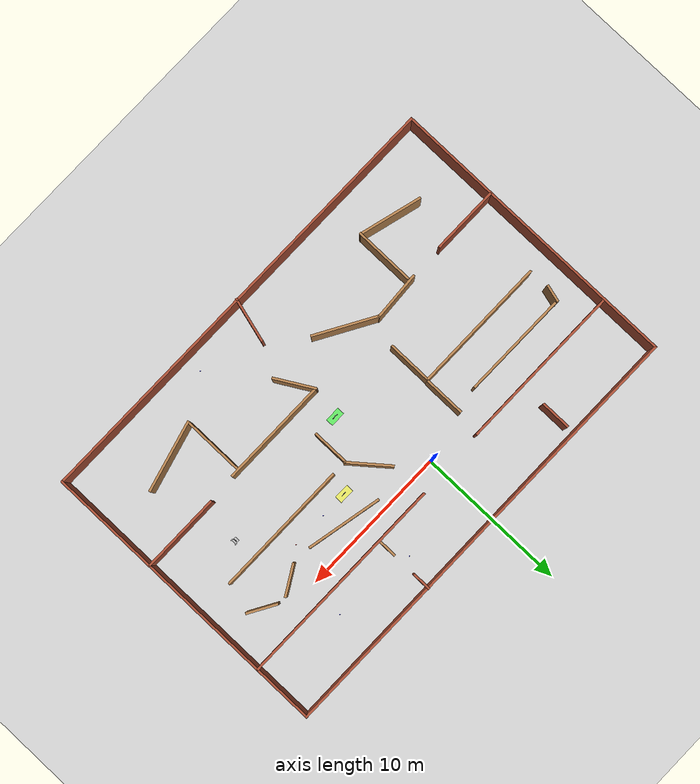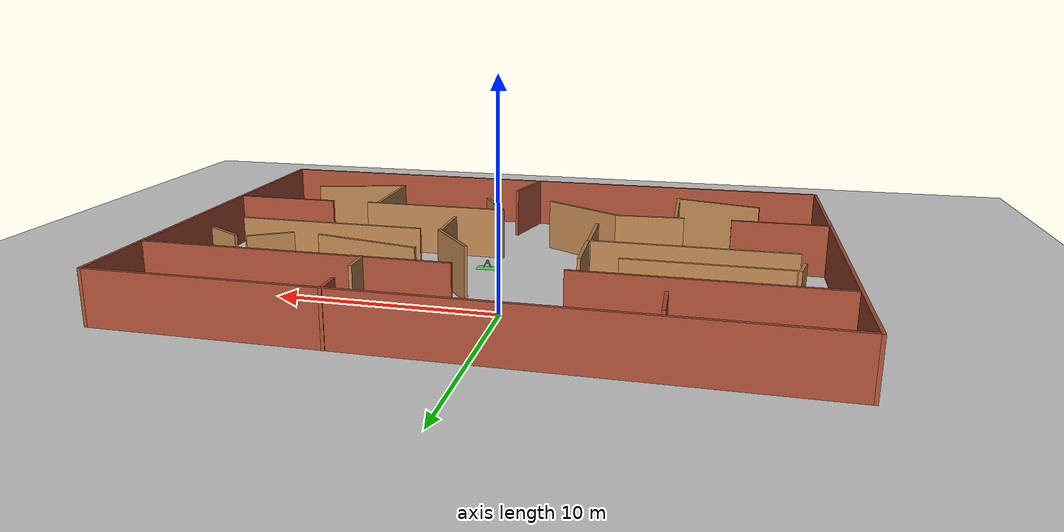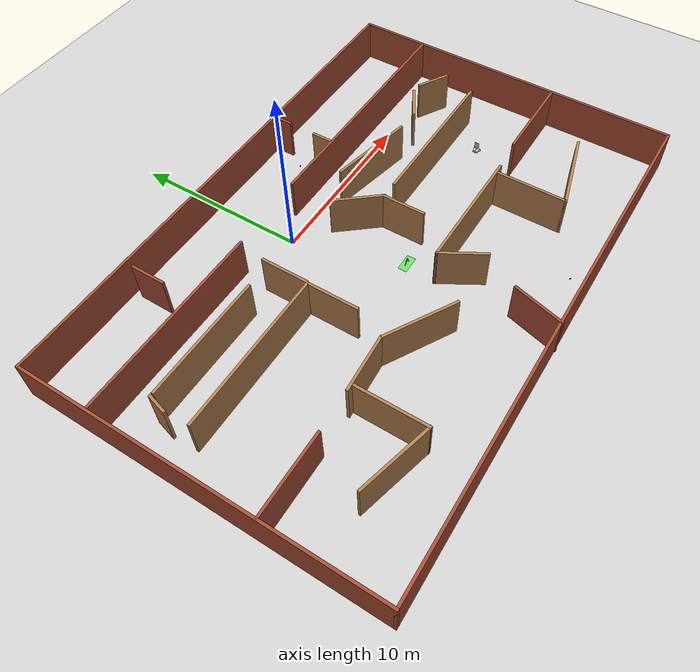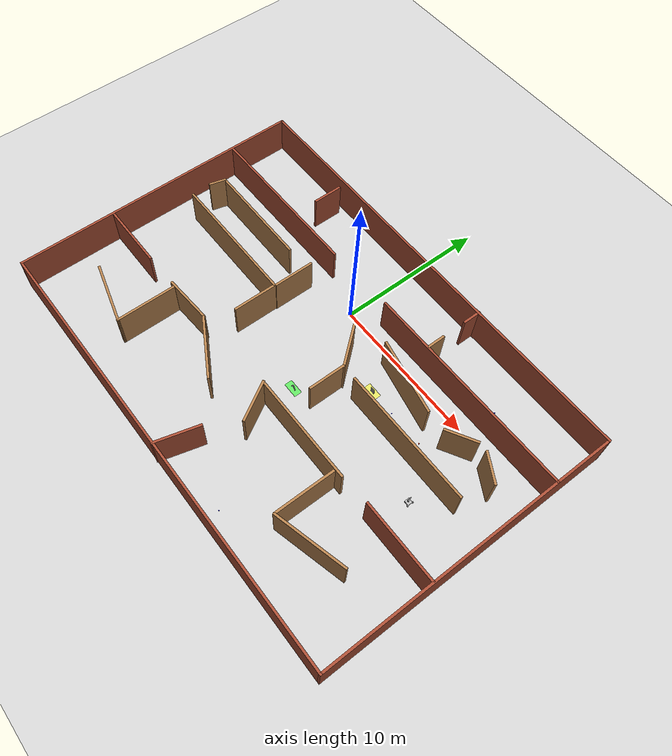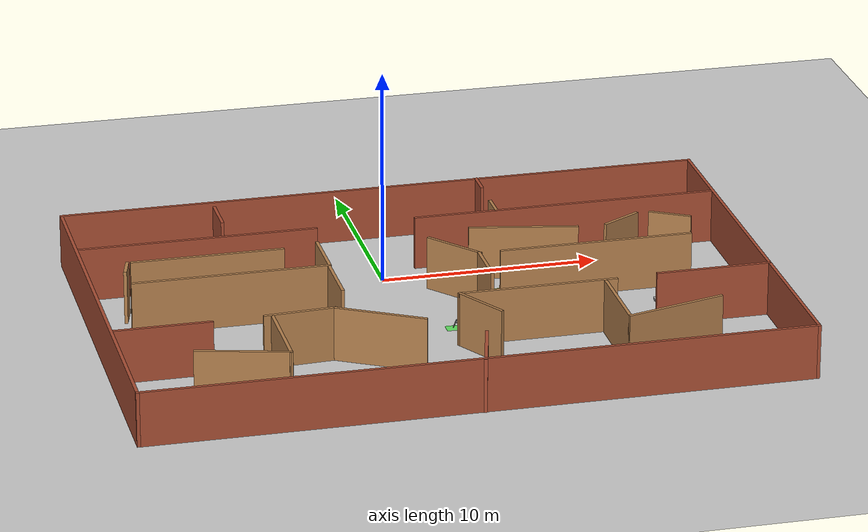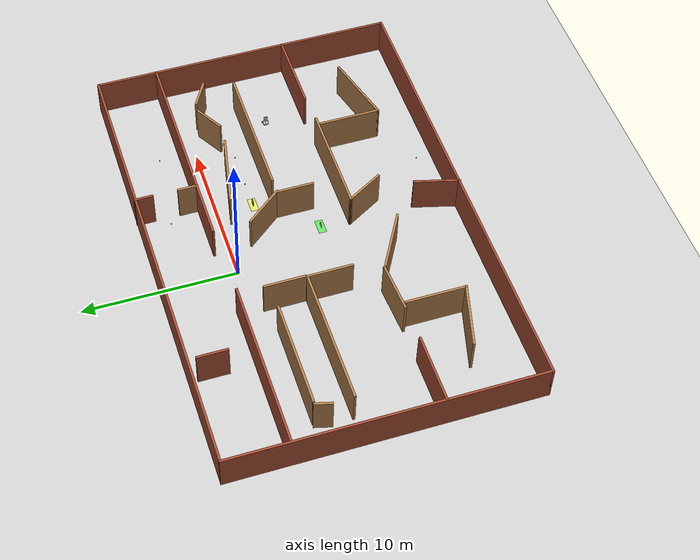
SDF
<sdf version="1.7">
 <world name="my_world">
  <model name="ground_plane">
   <static>1</static>
   <link name="link">
    <collision name="collision">
     <geometry><plane><normal>0 0 1</normal><size>100 100</size></plane></geometry>
     <surface>
      <contact><collide_bitmask>65535</collide_bitmask></contact>
      <friction><ode><mu>100</mu><mu2>50</mu2></ode></friction>
     </surface>
    </collision>
    <visual name="visual">
     <cast_shadows>0</cast_shadows>
     <geometry><plane><normal>0 0 1</normal><size>100 100</size></plane></geometry>
     <material>
      <script><uri>file://media/materials/scripts/gazebo.material</uri><name>Gazebo/Grey</name></script>
     </material>
    </visual>
   </link>
  </model>
  <model name="officeroom">
   <pose>0.9981 -4.92976 0 0 -0 0</pose>
   <link name="Wall_10">
    <collision name="Wall_10_Collision">
     <geometry><box><size>20 0.15 2.5</size></box></geometry>
     <pose>0 0 1.25 0 -0 0</pose>
    </collision>
    <visual name="Wall_10_Visual">
     <pose>0 0 1.25 0 -0 0</pose>
     <geometry><box><size>20 0.15 2.5</size></box></geometry>
     <material>
      <script><uri>file://media/materials/scripts/gazebo.material</uri><name>Gazebo/Bricks</name></script>
      <ambient>1 1 1 1</ambient>
     </material>
     <meta><layer>0</layer></meta>
    </visual>
    <pose>14.925 0.014919 0 0 -0 -1.57081</pose>
   </link>
   <link name="Wall_107">
    <collision name="Wall_107_Collision">
     <geometry><box><size>3.27854 0.15 2.5</size></box></geometry>
     <pose>0 0 1.25 0 -0 0</pose>
    </collision>
    <visual name="Wall_107_Visual">
     <pose>0 0 1.25 0 -0 0</pose>
     <geometry><box><size>3.27854 0.15 2.5</size></box></geometry>
     <material>
      <script><uri>file://media/materials/scripts/gazebo.material</uri><name>Gazebo/Wood</name></script>
      <ambient>1 1 1 1</ambient>
     </material>
     <meta><layer>0</layer></meta>
    </visual>
    <pose>-6.58027 -3.242 0 0 -0 -3.08207</pose>
   </link>
   <link name="Wall_109">
    <collision name="Wall_109_Collision">
     <geometry><box><size>4.5 0.15 2.5</size></box></geometry>
     <pose>0 0 1.25 0 -0 0</pose>
    </collision>
    <visual name="Wall_109_Visual">
     <pose>0 0 1.25 0 -0 0</pose>
     <geometry><box><size>4.5 0.15 2.5</size></box></geometry>
     <material>
      <script><uri>file://media/materials/scripts/gazebo.material</uri><name>Gazebo/Bricks</name></script>
      <ambient>1 1 1 1</ambient>
     </material>
     <meta><layer>0</layer></meta>
    </visual>
    <pose>-12.6881 -3.41033 0 0 -0 0</pose>
   </link>
   <link name="Wall_113">
    <collision name="Wall_113_Collision">
     <geometry><box><size>7.25 0.15 2.5</size></box></geometry>
     <pose>0 0 1.25 0 -0 0</pose>
    </collision>
    <visual name="Wall_113_Visual">
     <pose>0 0 1.25 0 -0 0</pose>
     <geometry><box><size>7.25 0.15 2.5</size></box></geometry>
     <material>
      <script><uri>file://media/materials/scripts/gazebo.material</uri><name>Gazebo/Wood</name></script>
      <ambient>1 1 1 1</ambient>
     </material>
     <meta><layer>0</layer></meta>
    </visual>
    <pose>4.22386 -2.91887 0 0 -0 0</pose>
   </link>
   <link name="Wall_115">
    <collision name="Wall_115_Collision">
     <geometry><box><size>5.25 0.15 2.5</size></box></geometry>
     <pose>0 0 1.25 0 -0 0</pose>
    </collision>
    <visual name="Wall_115_Visual">
     <pose>0 0 1.25 0 -0 0</pose>
     <geometry><box><size>5.25 0.15 2.5</size></box></geometry>
     <material>
      <script><uri>file://media/materials/scripts/gazebo.material</uri><name>Gazebo/Bricks</name></script>
      <ambient>1 1 1 1</ambient>
     </material>
     <meta><layer>0</layer></meta>
    </visual>
    <pose>12.3137 -2.7793 0 0 -0 3.14159</pose>
   </link>
   <link name="Wall_118">
    <collision name="Wall_118_Collision">
     <geometry><box><size>2.5 0.15 2.5</size></box></geometry>
     <pose>0 0 1.25 0 -0 0</pose>
    </collision>
    <visual name="Wall_118_Visual">
     <pose>0 0 1.25 0 -0 0</pose>
     <geometry><box><size>2.5 0.15 2.5</size></box></geometry>
     <material>
      <script><uri>file://media/materials/scripts/gazebo.material</uri><name>Gazebo/Wood</name></script>
      <ambient>1 1 1 1</ambient>
     </material>
     <meta><layer>0</layer></meta>
    </visual>
    <pose>2.60295 0.147134 0 0 -0 -1.5708</pose>
   </link>
   <link name="Wall_12">
    <collision name="Wall_12_Collision">
     <geometry><box><size>30 0.15 2.5</size></box></geometry>
     <pose>0 0 1.25 0 -0 0</pose>
    </collision>
    <visual name="Wall_12_Visual">
     <pose>0 0 1.25 0 -0 0</pose>
     <geometry><box><size>30 0.15 2.5</size></box></geometry>
     <material>
      <script><uri>file://media/materials/scripts/gazebo.material</uri><name>Gazebo/Bricks</name></script>
      <ambient>1 1 1 1</ambient>
     </material>
     <meta><layer>0</layer></meta>
    </visual>
    <pose>-0.000162 -9.90993 0 0 -0 3.14159</pose>
   </link>
   <link name="Wall_120">
    <collision name="Wall_120_Collision">
     <geometry><box><size>2.75 0.15 2.5</size></box></geometry>
     <pose>0 0 1.25 0 -0 0</pose>
    </collision>
    <visual name="Wall_120_Visual">
     <pose>0 0 1.25 0 -0 0</pose>
     <geometry><box><size>2.75 0.15 2.5</size></box></geometry>
     <material>
      <script><uri>file://media/materials/scripts/gazebo.material</uri><name>Gazebo/Wood</name></script>
      <ambient>1 1 1 1</ambient>
     </material>
     <meta><layer>0</layer></meta>
    </visual>
    <pose>1.32386 -4.0447 0 0 -0 -1.0472</pose>
   </link>
   <link name="Wall_125">
    <collision name="Wall_125_Collision">
     <geometry><box><size>4 0.15 2.5</size></box></geometry>
     <pose>0 0 1.25 0 -0 0</pose>
    </collision>
    <visual name="Wall_125_Visual">
     <pose>0 0 1.25 0 -0 0</pose>
     <geometry><box><size>4 0.15 2.5</size></box></geometry>
     <material>
      <script><uri>file://media/materials/scripts/gazebo.material</uri><name>Gazebo/Wood</name></script>
      <ambient>1 1 1 1</ambient>
     </material>
     <meta><layer>0</layer></meta>
    </visual>
    <pose>-7.82101 -5.406 0 0 -0 -1.5708</pose>
   </link>
   <link name="Wall_127">
    <collision name="Wall_127_Collision">
     <geometry><box><size>4 0.15 2.5</size></box></geometry>
     <pose>0 0 1.25 0 -0 0</pose>
    </collision>
    <visual name="Wall_127_Visual">
     <pose>0 0 1.25 0 -0 0</pose>
     <geometry><box><size>4 0.15 2.5</size></box></geometry>
     <material>
      <script><uri>file://media/materials/scripts/gazebo.material</uri><name>Gazebo/Wood</name></script>
      <ambient>1 1 1 1</ambient>
     </material>
     <meta><layer>0</layer></meta>
    </visual>
    <pose>7.28181 -5.01384 0 0 -0 -1.5708</pose>
   </link>
   <link name="Wall_129">
    <collision name="Wall_129_Collision">
     <geometry><box><size>4.25 0.15 2.5</size></box></geometry>
     <pose>0 0 1.25 0 -0 0</pose>
    </collision>
    <visual name="Wall_129_Visual">
     <pose>0 0 1.25 0 -0 0</pose>
     <geometry><box><size>4.25 0.15 2.5</size></box></geometry>
     <material>
      <script><uri>file://media/materials/scripts/gazebo.material</uri><name>Gazebo/Wood</name></script>
      <ambient>1 1 1 1</ambient>
     </material>
     <meta><layer>0</layer></meta>
    </visual>
    <pose>-9.80116 -6.80042 0 0 -0 2.87979</pose>
   </link>
   <link name="Wall_132">
    <collision name="Wall_132_Collision">
     <geometry><box><size>4.75 0.15 2.5</size></box></geometry>
     <pose>0 0 1.25 0 -0 0</pose>
    </collision>
    <visual name="Wall_132_Visual">
     <pose>0 0 1.25 0 -0 0</pose>
     <geometry><box><size>4.75 0.15 2.5</size></box></geometry>
     <material>
      <script><uri>file://media/materials/scripts/gazebo.material</uri><name>Gazebo/Wood</name></script>
      <ambient>1 1 1 1</ambient>
     </material>
     <meta><layer>0</layer></meta>
    </visual>
    <pose>9.51735 -6.40461 0 0 -0 0.261799</pose>
   </link>
   <link name="Wall_134">
    <collision name="Wall_134_Collision">
     <geometry><box><size>3 0.15 2.5</size></box></geometry>
     <pose>0 0 1.25 0 -0 0</pose>
    </collision>
    <visual name="Wall_134_Visual">
     <pose>0 0 1.25 0 -0 0</pose>
     <geometry><box><size>3 0.15 2.5</size></box></geometry>
     <material>
      <script><uri>file://media/materials/scripts/gazebo.material</uri><name>Gazebo/Bricks</name></script>
      <ambient>1 1 1 1</ambient>
     </material>
     <meta><layer>0</layer></meta>
    </visual>
    <pose>0.445972 -8.57754 0 0 -0 1.309</pose>
   </link>
   <link name="Wall_15">
    <collision name="Wall_15_Collision">
     <geometry><box><size>20 0.15 2.5</size></box></geometry>
     <pose>0 0 1.25 0 -0 0</pose>
    </collision>
    <visual name="Wall_15_Visual">
     <pose>0 0 1.25 0 -0 0</pose>
     <geometry><box><size>20 0.15 2.5</size></box></geometry>
     <material>
      <script><uri>file://media/materials/scripts/gazebo.material</uri><name>Gazebo/Bricks</name></script>
      <ambient>1 1 1 1</ambient>
     </material>
     <meta><layer>0</layer></meta>
    </visual>
    <pose>-14.9252 0.015073 0 0 -0 1.5708</pose>
   </link>
   <link name="Wall_2">
    <collision name="Wall_2_Collision">
     <geometry><box><size>30 0.15 2.5</size></box></geometry>
     <pose>0 0 1.25 0 -0 0</pose>
    </collision>
    <visual name="Wall_2_Visual">
     <pose>0 0 1.25 0 -0 0</pose>
     <geometry><box><size>30 0.15 2.5</size></box></geometry>
     <material>
      <script><uri>file://media/materials/scripts/gazebo.material</uri><name>Gazebo/Bricks</name></script>
      <ambient>1 1 1 1</ambient>
     </material>
     <meta><layer>0</layer></meta>
    </visual>
    <pose>0.000163 9.93976 0 0 -0 0</pose>
   </link>
   <link name="Wall_29">
    <collision name="Wall_29_Collision">
     <geometry><box><size>1.25 0.15 2.5</size></box></geometry>
     <pose>0 0 1.25 0 -0 0</pose>
    </collision>
    <visual name="Wall_29_Visual">
     <pose>0 0 1.25 0 -0 0</pose>
     <geometry><box><size>1.25 0.15 2.5</size></box></geometry>
     <material>
      <script><uri>file://media/materials/scripts/gazebo.material</uri><name>Gazebo/Bricks</name></script>
      <ambient>1 1 1 1</ambient>
     </material>
     <meta><layer>0</layer></meta>
    </visual>
    <pose>4.61028 9.42084 0 0 -0 -1.5708</pose>
   </link>
   <link name="Wall_31">
    <collision name="Wall_31_Collision">
     <geometry><box><size>1.25 0.15 2.5</size></box></geometry>
     <pose>0 0 1.25 0 -0 0</pose>
    </collision>
    <visual name="Wall_31_Visual">
     <pose>0 0 1.25 0 -0 0</pose>
     <geometry><box><size>1.25 0.15 2.5</size></box></geometry>
     <material>
      <script><uri>file://media/materials/scripts/gazebo.material</uri><name>Gazebo/Wood</name></script>
      <ambient>1 1 1 1</ambient>
     </material>
     <meta><layer>0</layer></meta>
    </visual>
    <pose>4.59016 6.61881 0 0 -0 1.5708</pose>
   </link>
   <link name="Wall_34">
    <collision name="Wall_34_Collision">
     <geometry><box><size>2 0.15 2.5</size></box></geometry>
     <pose>0 0 1.25 0 -0 0</pose>
    </collision>
    <visual name="Wall_34_Visual">
     <pose>0 0 1.25 0 -0 0</pose>
     <geometry><box><size>2 0.15 2.5</size></box></geometry>
     <material>
      <script><uri>file://media/materials/scripts/gazebo.material</uri><name>Gazebo/Bricks</name></script>
      <ambient>1 1 1 1</ambient>
     </material>
     <meta><layer>0</layer></meta>
    </visual>
    <pose>-7.92097 8.43964 0 0 -0 -1.5708</pose>
   </link>
   <link name="Wall_38">
    <collision name="Wall_38_Collision">
     <geometry><box><size>11 0.15 2.5</size></box></geometry>
     <pose>0 0 1.25 0 -0 0</pose>
    </collision>
    <visual name="Wall_38_Visual">
     <pose>0 0 1.25 0 -0 0</pose>
     <geometry><box><size>11 0.15 2.5</size></box></geometry>
     <material>
      <script><uri>file://media/materials/scripts/gazebo.material</uri><name>Gazebo/Bricks</name></script>
      <ambient>1 1 1 1</ambient>
     </material>
     <meta><layer>0</layer></meta>
    </visual>
    <pose>-9.35541 5.8262 0 0 -0 0</pose>
   </link>
   <link name="Wall_40">
    <collision name="Wall_40_Collision">
     <geometry><box><size>14.25 0.15 2.5</size></box></geometry>
     <pose>0 0 1.25 0 -0 0</pose>
    </collision>
    <visual name="Wall_40_Visual">
     <pose>0 0 1.25 0 -0 0</pose>
     <geometry><box><size>14.25 0.15 2.5</size></box></geometry>
     <material>
      <script><uri>file://media/materials/scripts/gazebo.material</uri><name>Gazebo/Bricks</name></script>
      <ambient>1 1 1 1</ambient>
     </material>
     <meta><layer>0</layer></meta>
    </visual>
    <pose>7.83962 5.98375 0 0 -0 3.14159</pose>
   </link>
   <link name="Wall_46">
    <collision name="Wall_46_Collision">
     <geometry><box><size>7.0 0.15 2.5</size></box></geometry>
     <pose>0 0 1.25 0 -0 0</pose>
    </collision>
    <visual name="Wall_46_Visual">
     <pose>0 0 1.25 0 -0 0</pose>
     <geometry><box><size>7.0 0.15 2.5</size></box></geometry>
     <material>
      <script><uri>file://media/materials/scripts/gazebo.material</uri><name>Gazebo/Wood</name></script>
      <ambient>1 1 1 1</ambient>
     </material>
     <meta><layer>0</layer></meta>
    </visual>
    <pose>-9.30884 3.8355 0 0 -0 -0.004163</pose>
   </link>
   <link name="Wall_49">
    <collision name="Wall_49_Collision">
     <geometry><box><size>1.17019 0.15 2.5</size></box></geometry>
     <pose>0 0 1.25 0 -0 0</pose>
    </collision>
    <visual name="Wall_49_Visual">
     <pose>0 0 1.25 0 -0 0</pose>
     <geometry><box><size>1.17019 0.15 2.5</size></box></geometry>
     <material>
      <script><uri>file://media/materials/scripts/gazebo.material</uri><name>Gazebo/Wood</name></script>
      <ambient>1 1 1 1</ambient>
     </material>
     <meta><layer>0</layer></meta>
    </visual>
    <pose>-13.076 3.35727 0 0 -0 -1.82702</pose>
   </link>
   <link name="Wall_57">
    <collision name="Wall_57_Collision">
     <geometry><box><size>2.75 0.15 2.5</size></box></geometry>
     <pose>0 0 1.25 0 -0 0</pose>
    </collision>
    <visual name="Wall_57_Visual">
     <pose>0 0 1.25 0 -0 0</pose>
     <geometry><box><size>2.75 0.15 2.5</size></box></geometry>
     <material>
      <script><uri>file://media/materials/scripts/gazebo.material</uri><name>Gazebo/Wood</name></script>
      <ambient>1 1 1 1</ambient>
     </material>
     <meta><layer>0</layer></meta>
    </visual>
    <pose>-4.21161 2.89682 0 0 -0 1.5708</pose>
   </link>
   <link name="Wall_59">
    <collision name="Wall_59_Collision">
     <geometry><box><size>5.0 0.15 2.5</size></box></geometry>
     <pose>0 0 1.25 0 -0 0</pose>
    </collision>
    <visual name="Wall_59_Visual">
     <pose>0 0 1.25 0 -0 0</pose>
     <geometry><box><size>5.0 0.15 2.5</size></box></geometry>
     <material>
      <script><uri>file://media/materials/scripts/gazebo.material</uri><name>Gazebo/Wood</name></script>
      <ambient>1 1 1 1</ambient>
     </material>
     <meta><layer>0</layer></meta>
    </visual>
    <pose>5.28704 3.77735 0 0 -0 -0.202428</pose>
   </link>
   <link name="Wall_60">
    <collision name="Wall_60_Collision">
     <geometry><box><size>2.1 0.15 2.5</size></box></geometry>
     <pose>0 0 1.25 0 -0 0</pose>
    </collision>
    <visual name="Wall_60_Visual">
     <pose>0 0 1.25 0 -0 0</pose>
     <geometry><box><size>2.1 0.15 2.5</size></box></geometry>
     <material>
      <script><uri>file://media/materials/scripts/gazebo.material</uri><name>Gazebo/Wood</name></script>
      <ambient>1 1 1 1</ambient>
     </material>
     <meta><layer>0</layer></meta>
    </visual>
    <pose>9.88652 3.73459 0 0 -0 0.527727</pose>
   </link>
   <link name="Wall_61">
    <collision name="Wall_61_Collision">
     <geometry><box><size>2.0 0.15 2.5</size></box></geometry>
     <pose>0 0 1.25 0 -0 0</pose>
    </collision>
    <visual name="Wall_61_Visual">
     <pose>0 0 1.25 0 -0 0</pose>
     <geometry><box><size>2.0 0.15 2.5</size></box></geometry>
     <material>
      <script><uri>file://media/materials/scripts/gazebo.material</uri><name>Gazebo/Wood</name></script>
      <ambient>1 1 1 1</ambient>
     </material>
     <meta><layer>0</layer></meta>
    </visual>
    <pose>12.2003 3.7238 0 0 -0 -0.523599</pose>
   </link>
   <link name="Wall_66">
    <collision name="Wall_66_Collision">
     <geometry><box><size>3.01901 0.15 2.5</size></box></geometry>
     <pose>0 0 1.25 0 -0 0</pose>
    </collision>
    <visual name="Wall_66_Visual">
     <pose>0 0 1.25 0 -0 0</pose>
     <geometry><box><size>3.01901 0.15 2.5</size></box></geometry>
     <material>
      <script><uri>file://media/materials/scripts/gazebo.material</uri><name>Gazebo/Wood</name></script>
      <ambient>1 1 1 1</ambient>
     </material>
     <meta><layer>0</layer></meta>
    </visual>
    <pose>1.74226 2.43334 0 0 -0 2.25548</pose>
   </link>
   <link name="Wall_68">
    <collision name="Wall_68_Collision">
     <geometry><box><size>9 0.15 2.5</size></box></geometry>
     <pose>0 0 1.25 0 -0 0</pose>
    </collision>
    <visual name="Wall_68_Visual">
     <pose>0 0 1.25 0 -0 0</pose>
     <geometry><box><size>9 0.15 2.5</size></box></geometry>
     <material>
      <script><uri>file://media/materials/scripts/gazebo.material</uri><name>Gazebo/Wood</name></script>
      <ambient>1 1 1 1</ambient>
     </material>
     <meta><layer>0</layer></meta>
    </visual>
    <pose>-8.68528 1.49923 0 0 -0 3.14159</pose>
   </link>
   <link name="Wall_72">
    <collision name="Wall_72_Collision">
     <geometry><box><size>8.9356 0.15 2.5</size></box></geometry>
     <pose>0 0 1.25 0 -0 0</pose>
    </collision>
    <visual name="Wall_72_Visual">
     <pose>0 0 1.25 0 -0 0</pose>
     <geometry><box><size>8.9356 0.15 2.5</size></box></geometry>
     <material>
      <script><uri>file://media/materials/scripts/gazebo.material</uri><name>Gazebo/Wood</name></script>
      <ambient>1 1 1 1</ambient>
     </material>
     <meta><layer>0</layer></meta>
    </visual>
    <pose>8.04226 1.32213 0 0 -0 3.14159</pose>
   </link>
   <link name="Wall_75">
    <collision name="Wall_75_Collision">
     <geometry><box><size>3 0.15 2.5</size></box></geometry>
     <pose>0 0 1.25 0 -0 0</pose>
    </collision>
    <visual name="Wall_75_Visual">
     <pose>0 0 1.25 0 -0 0</pose>
     <geometry><box><size>3 0.15 2.5</size></box></geometry>
     <material>
      <script><uri>file://media/materials/scripts/gazebo.material</uri><name>Gazebo/Wood</name></script>
      <ambient>1 1 1 1</ambient>
     </material>
     <meta><layer>0</layer></meta>
    </visual>
    <pose>-4.26028 0.074229 0 0 -0 -1.5708</pose>
   </link>
   <link name="Wall_81">
    <collision name="Wall_81_Collision">
     <geometry><box><size>4.25 0.15 2.5</size></box></geometry>
     <pose>0 0 1.25 0 -0 0</pose>
    </collision>
    <visual name="Wall_81_Visual">
     <pose>0 0 1.25 0 -0 0</pose>
     <geometry><box><size>4.25 0.15 2.5</size></box></geometry>
     <material>
      <script><uri>file://media/materials/scripts/gazebo.material</uri><name>Gazebo/Wood</name></script>
      <ambient>1 1 1 1</ambient>
     </material>
     <meta><layer>0</layer></meta>
    </visual>
    <pose>-3.1969 -4.22048 0 0 -0 -0.523599</pose>
   </link>
   <static>1</static>
  </model>
  <model name="blue_cube_1">
   <pose>5.6 -13.8 .025 0 0 0</pose>
   <link name="link">
    <inertial>
     <mass>.03</mass>
     <inertia>
      <ixx>.0000125</ixx>
      <ixy>0</ixy>
      <ixz>0</ixz>
      <iyy>.0000125</iyy>
      <iyz>0</iyz>
      <izz>.0000125</izz>
     </inertia>
    </inertial>
    <collision name="collision">
     <geometry><box><size>.05 .05 .05</size></box></geometry>
     <max_contacts>1</max_contacts>
    </collision>
    <visual name="visual">
     <geometry><box><size>.05 .05 .05</size></box></geometry>
     <material><ambient>0 0 1 1</ambient><diffuse>0 0 1 1</diffuse></material>
    </visual>
   </link>
  </model>
  <model name="zone_a">
   <static>1</static>
   <pose>2.0 -6.0 0.01 0 0 0</pose>
   <link name="base">
    <visual name="visual">
     <geometry><box><size>1 0.5 0.02</size></box></geometry>
     <material><ambient>0 1 0 0.5</ambient><diffuse>0 1 0 0.5</diffuse></material>
    </visual>
   </link>
   <link name="letter_A_1">
    <pose>-0.1 0 0.22 0 0.4 0</pose>
    <visual name="v">
     <geometry><box><size>0.04 0.04 0.4</size></box></geometry>
     <material><ambient>0 0 0 1</ambient><diffuse>0 0 0 1</diffuse></material>
    </visual>
   </link>
   <link name="letter_A_2">
    <pose>0.1 0 0.22 0 -0.4 0</pose>
    <visual name="v">
     <geometry><box><size>0.04 0.04 0.4</size></box></geometry>
     <material><ambient>0 0 0 1</ambient><diffuse>0 0 0 1</diffuse></material>
    </visual>
   </link>
   <link name="letter_A_3">
    <pose>0 0 0.25 0 -0 0</pose>
    <visual name="v">
     <geometry><box><size>0.15 0.04 0.04</size></box></geometry>
     <material><ambient>0 0 0 1</ambient><diffuse>0 0 0 1</diffuse></material>
    </visual>
   </link>
  </model>
  <model name="red_cube_5">
   <pose>9.2 -2.4 .025 0 0 0</pose>
   <link name="link">
    <inertial>
     <mass>.03</mass>
     <inertia>
      <ixx>.0000125</ixx>
      <ixy>0</ixy>
      <ixz>0</ixz>
      <iyy>.0000125</iyy>
      <iyz>0</iyz>
      <izz>.0000125</izz>
     </inertia>
    </inertial>
    <collision name="collision">
     <geometry><box><size>.05 .05 .05</size></box></geometry>
     <max_contacts>1</max_contacts>
    </collision>
    <visual name="visual">
     <geometry><box><size>.05 .05 .05</size></box></geometry>
     <material><ambient>1 0 0 1</ambient><diffuse>1 0 0 1</diffuse></material>
    </visual>
   </link>
  </model>
  <model name="zone_b">
   <static>1</static>
   <pose>5.0 -2.4 0.01 0 0 0</pose>
   <link name="base">
    <visual name="visual">
     <geometry><box><size>1 0.5 0.02</size></box></geometry>
     <material><ambient>1 1 0 0.5</ambient><diffuse>1 1 0 0.5</diffuse></material>
    </visual>
   </link>
   <link name="letter_B_vertical_stroke">
    <pose>-0.1 0 0.2 0 -0 0</pose>
    <visual name="v">
     <geometry><box><size>0.04 0.04 0.4</size></box></geometry>
     <material><ambient>0 0 0 1</ambient><diffuse>0 0 0 1</diffuse></material>
    </visual>
   </link>
   <link name="letter_B_top_horizontal">
    <pose>0.05 0 0.38 0 -0 0</pose>
    <visual name="v">
     <geometry><box><size>0.25 0.04 0.04</size></box></geometry>
     <material><ambient>0 0 0 1</ambient><diffuse>0 0 0 1</diffuse></material>
    </visual>
   </link>
   <link name="letter_B_middle_horizontal">
    <pose>0.05 0 0.2 0 -0 0</pose>
    <visual name="v">
     <geometry><box><size>0.25 0.04 0.04</size></box></geometry>
     <material><ambient>0 0 0 1</ambient><diffuse>0 0 0 1</diffuse></material>
    </visual>
   </link>
   <link name="letter_B_bottom_horizontal">
    <pose>0.05 0 0.02 0 -0 0</pose>
    <visual name="v">
     <geometry><box><size>0.25 0.04 0.04</size></box></geometry>
     <material><ambient>0 0 0 1</ambient><diffuse>0 0 0 1</diffuse></material>
    </visual>
   </link>
   <link name="letter_B_top_vertical_stroke">
    <pose>0.15 0 0.29 0 -0 0</pose>
    <visual name="v">
     <geometry><box><size>0.04 0.04 0.2</size></box></geometry>
     <material><ambient>0 0 0 1</ambient><diffuse>0 0 0 1</diffuse></material>
    </visual>
   </link>
   <link name="letter_B_bottom_vertical_stroke">
    <pose>0.15 0 0.11 0 -0 0</pose>
    <visual name="v">
     <geometry><box><size>0.04 0.04 0.2</size></box></geometry>
     <material><ambient>0 0 0 1</ambient><diffuse>0 0 0 1</diffuse></material>
    </visual>
   </link>
  </model>
  <model name="blue_cube_5">
   <pose>5.0 3.0 .025 0 0 0</pose>
   <link name="link">
    <inertial>
     <mass>.03</mass>
     <inertia>
      <ixx>.0000125</ixx>
      <ixy>0</ixy>
      <ixz>0</ixz>
      <iyy>.0000125</iyy>
      <iyz>0</iyz>
      <izz>.0000125</izz>
     </inertia>
    </inertial>
    <collision name="collision">
     <geometry><box><size>.05 .05 .05</size></box></geometry>
     <max_contacts>1</max_contacts>
    </collision>
    <visual name="visual">
     <geometry><box><size>.05 .05 .05</size></box></geometry>
     <material><ambient>0 0 1 1</ambient><diffuse>0 0 1 1</diffuse></material>
    </visual>
   </link>
  </model>
  <model name="blue_cube_3">
   <pose>6.8 -2.4 .025 0 0 0</pose>
   <link name="link">
    <inertial>
     <mass>.03</mass>
     <inertia>
      <ixx>.0000125</ixx>
      <ixy>0</ixy>
      <ixz>0</ixz>
      <iyy>.0000125</iyy>
      <iyz>0</iyz>
      <izz>.0000125</izz>
     </inertia>
    </inertial>
    <collision name="collision">
     <geometry><box><size>.05 .05 .05</size></box></geometry>
     <max_contacts>1</max_contacts>
    </collision>
    <visual name="visual">
     <geometry><box><size>.05 .05 .05</size></box></geometry>
     <material><ambient>0 0 1 1</ambient><diffuse>0 0 1 1</diffuse></material>
    </visual>
   </link>
  </model>
  <model name="blue_cube_4">
   <pose>10.4 2.4 .025 0 0 0</pose>
   <link name="link">
    <inertial>
     <mass>.03</mass>
     <inertia>
      <ixx>.0000125</ixx>
      <ixy>0</ixy>
      <ixz>0</ixz>
      <iyy>.0000125</iyy>
      <iyz>0</iyz>
      <izz>.0000125</izz>
     </inertia>
    </inertial>
    <collision name="collision">
     <geometry><box><size>.05 .05 .05</size></box></geometry>
     <max_contacts>1</max_contacts>
    </collision>
    <visual name="visual">
     <geometry><box><size>.05 .05 .05</size></box></geometry>
     <material><ambient>0 0 1 1</ambient><diffuse>0 0 1 1</diffuse></material>
    </visual>
   </link>
  </model>
  <model name="competition_camera_overview">
   <static>true</static>
   <pose>1 -4.9 21 0 1.5707963 1.5707963</pose>
   <link name="camera_link">
    <sensor name="overview_sensor" type="camera">
     <always_on>true</always_on>
     <update_rate>60</update_rate>
     <camera name="overview">
      <horizontal_fov>1.5708</horizontal_fov>
      <image><width>640</width><height>360</height><format>R8G8B8</format></image>
      <clip><near>0.05</near><far>60</far></clip>
     </camera>
     <plugin name="overview_ros_camera" filename="libgazebo_ros_camera.so">
      <ros><remapping>~/image_raw:=image_raw</remapping><remapping>~/camera_info:=camera_info</remapping></ros>
      <camera_name>fixed_overview</camera_name>
      <frame_name>fixed_overview_camera</frame_name>
     </plugin>
     <plugin name="overview_compressed_camera" filename="libcompetition_camera_stream.so">
      <topic_name>/fixed_overview/image_raw/compressed</topic_name>
      <frame_name>fixed_overview_camera</frame_name>
     </plugin>
    </sensor>
   </link>
  </model>
  <model name="Move2">
   <link name="base_footprint">
    <inertial>
     <pose>-0.032308 0 0.0857 0 -0 0</pose>
     <mass>13</mass>
     <inertia>
      <ixx>0.108098</ixx>
      <ixy>0</ixy>
      <ixz>-0.02478</ixz>
      <iyy>0.230329</iyy>
      <iyz>0</iyz>
      <izz>0.139753</izz>
     </inertia>
    </inertial>
    <collision name="base_footprint_fixed_joint_lump__base_link_collision">
     <pose>0 0 0.1034 0 -0 0</pose>
     <geometry><box><size>0.32 0.32 0.1</size></box></geometry>
    </collision>
    <collision name="base_footprint_fixed_joint_lump__back_caster_link_collision_1">
     <pose>-0.14 0 0.0267 0 -0 0</pose>
     <geometry><sphere><radius>0.0267</radius></sphere></geometry>
    </collision>
    <visual name="base_footprint_visual"><geometry><box><size>0.001 0.001 0.001</size></box></geometry></visual>
    <visual name="base_footprint_fixed_joint_lump__base_link_visual_1">
     <pose>0 0 0.1034 0 -0 0</pose>
     <geometry><box><size>0.32 0.32 0.1</size></box></geometry>
    </visual>
    <visual name="base_footprint_fixed_joint_lump__back_caster_link_visual_2">
     <pose>-0.14 0 0.0267 0 -0 0</pose>
     <geometry><sphere><radius>0.0267</radius></sphere></geometry>
    </visual>
   </link>
   <joint name="left_wheel_joint" type="fixed">
    <pose relative_to="base_footprint">0.14 0.185 0.0684 0 -0 0</pose>
    <parent>base_footprint</parent>
    <child>left_wheel_link</child>
    <axis>
     <xyz>0 1 0</xyz>
     <limit><lower>-1e+16</lower><upper>1e+16</upper></limit>
     <dynamics><spring_reference>0</spring_reference><spring_stiffness>0</spring_stiffness></dynamics>
    </axis>
   </joint>
   <link name="left_wheel_link">
    <pose relative_to="left_wheel_joint">0 0 0 0 -0 0</pose>
    <inertial>
     <mass>3</mass>
     <inertia>
      <ixx>0.00379375</ixx>
      <ixy>0</ixy>
      <ixz>0</ixz>
      <iyy>0.00379375</iyy>
      <iyz>0</iyz>
      <izz>0.0063375</izz>
     </inertia>
    </inertial>
    <collision name="left_wheel_link_collision">
     <pose>0 0 0 1.5708 -0 0</pose>
     <geometry><cylinder><length>0.05</length><radius>0.065</radius></cylinder></geometry>
    </collision>
    <visual name="left_wheel_link_visual">
     <pose>0 0 0 1.5708 -0 0</pose>
     <geometry><cylinder><length>0.05</length><radius>0.065</radius></cylinder></geometry>
    </visual>
   </link>
   <joint name="right_wheel_joint" type="fixed">
    <pose relative_to="base_footprint">0.14 -0.185 0.0684 0 -0 0</pose>
    <parent>base_footprint</parent>
    <child>right_wheel_link</child>
    <axis>
     <xyz>0 1 0</xyz>
     <limit><lower>-1e+16</lower><upper>1e+16</upper></limit>
     <dynamics><spring_reference>0</spring_reference><spring_stiffness>0</spring_stiffness></dynamics>
    </axis>
   </joint>
   <link name="right_wheel_link">
    <pose relative_to="right_wheel_joint">0 0 0 0 -0 0</pose>
    <inertial>
     <mass>3</mass>
     <inertia>
      <ixx>0.00379375</ixx>
      <ixy>0</ixy>
      <ixz>0</ixz>
      <iyy>0.00379375</iyy>
      <iyz>0</iyz>
      <izz>0.0063375</izz>
     </inertia>
    </inertial>
    <collision name="right_wheel_link_collision">
     <pose>0 0 0 1.5708 -0 0</pose>
     <geometry><cylinder><length>0.05</length><radius>0.065</radius></cylinder></geometry>
    </collision>
    <visual name="right_wheel_link_visual">
     <pose>0 0 0 1.5708 -0 0</pose>
     <geometry><cylinder><length>0.05</length><radius>0.065</radius></cylinder></geometry>
    </visual>
   </link>
   <pose>11.5 -5.2 0.005 0 0 0.0</pose>
   <plugin name="competition_patrol" filename="libcompetition_patrol.so">
    <start>11.5 -5.2 0.005</start>
    <end>13.9 -5.2 0.005</end>
    <period>26.0</period>
   </plugin>
   <static>true</static>
   <link name="laser_link">
    <pose>0 0 .1634 0 0 0</pose>
    <visual name="original_lidar_visual">
     <geometry><cylinder><radius>.031</radius><length>.02</length></cylinder></geometry>
     <material><ambient>.08 .08 .08 1</ambient><diffuse>.08 .08 .08 1</diffuse></material>
    </visual>
    <collision name="original_lidar_collision">
     <geometry><cylinder><radius>.031</radius><length>.02</length></cylinder></geometry>
    </collision>
   </link>
   <joint name="lidar_joint" type="fixed"><parent>base_link</parent><child>laser_link</child></joint>
   <link name="picture_placard">
    <visual name="support">
     <pose>0 0 .25 0 0 0</pose>
     <geometry><cylinder><radius>.008</radius><length>.22</length></cylinder></geometry>
     <material><ambient>.12 .12 .12 1</ambient><diffuse>.12 .12 .12 1</diffuse></material>
    </visual>
    <visual name="picture">
     <pose>0 0 .49 0 0 0</pose>
     <geometry><box><size>.012 .26 .394</size></box></geometry>
     <material>
      <script>
       <uri>model://yzbot_signs/materials/scripts</uri>
       <uri>model://yzbot_signs/materials/textures</uri>
       <name>Yzbot/UserPlacard</name>
      </script>
     </material>
     <cast_shadows>false</cast_shadows>
    </visual>
    <collision name="board">
     <pose>0 0 .49 0 0 0</pose>
     <geometry><box><size>.012 .26 .394</size></box></geometry>
    </collision>
   </link>
  </model>
 </world>
</sdf>
